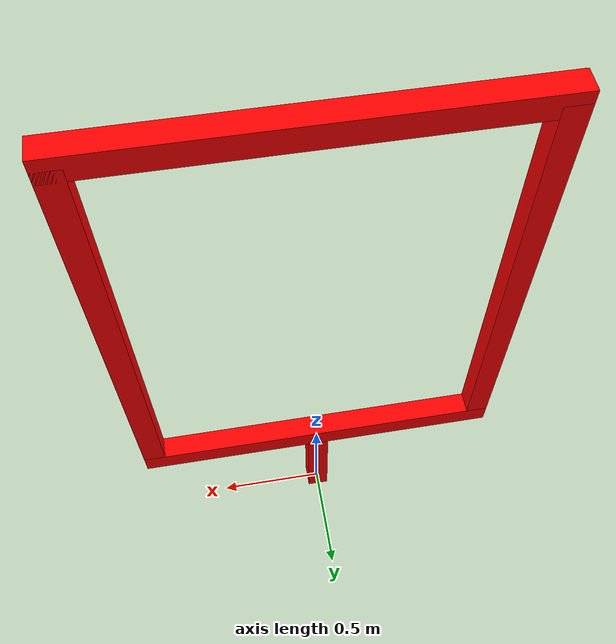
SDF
<?xml version="1.0" encoding="UTF-8"?>
<sdf version="1.9">
  <model name="puerta_roja_grande">  <static>true</static>
    <link name="soporte"> <pose>0 0 0.25 0 0 0</pose>
      <collision name="col_soporte"><geometry><box><size>0.1 0.1 0.5</size></box></geometry></collision>
      <visual name="vis_soporte"><geometry><box><size>0.1 0.1 0.5</size></box></geometry><material><ambient>1 0 0 1</ambient><diffuse>1 0 0 1</diffuse></material></visual>
    </link>
    <link name="barra_inferior">
      <pose>0 0 0.55 0 0 0</pose>
      <collision name="col_inferior"><geometry><box><size>1.7 0.1 0.1</size></box></geometry></collision>
      <visual name="vis_inferior"><geometry><box><size>1.7 0.1 0.1</size></box></geometry><material><ambient>1 0 0 1</ambient><diffuse>1 0 0 1</diffuse></material></visual>
    </link>
    <link name="barra_superior">
      <pose>0 0 2.55 0 0 0</pose>
      <collision name="col_superior"><geometry><box><size>1.7 0.1 0.1</size></box></geometry></collision>
      <visual name="vis_superior"><geometry><box><size>1.7 0.1 0.1</size></box></geometry><material><ambient>1 0 0 1</ambient><diffuse>1 0 0 1</diffuse></material></visual>
    </link>
    <link name="barra_izquierda">
      <pose>-0.8 0 1.55 0 0 0</pose>
      <collision name="col_izquierda"><geometry><box><size>0.1 0.1 2.0</size></box></geometry></collision>
      <visual name="vis_izquierda"><geometry><box><size>0.1 0.1 2.0</size></box></geometry><material><ambient>1 0 0 1</ambient><diffuse>1 0 0 1</diffuse></material></visual>
    </link>
    <link name="barra_derecha">
      <pose>0.8 0 1.55 0 0 0</pose>
      <collision name="col_derecha"><geometry><box><size>0.1 0.1 2.0</size></box></geometry></collision>
      <visual name="vis_derecha"><geometry><box><size>0.1 0.1 2.0</size></box></geometry><material><ambient>1 0 0 1</ambient><diffuse>1 0 0 1</diffuse></material></visual>
    </link>
    <joint name="joint_soporte_inferior" type="fixed"><parent>soporte</parent><child>barra_inferior</child></joint>
    <joint name="joint_inferior_izquierda" type="fixed"><parent>barra_inferior</parent><child>barra_izquierda</child></joint>
    <joint name="joint_inferior_derecha" type="fixed"><parent>barra_inferior</parent><child>barra_derecha</child></joint>
    <joint name="joint_inferior_superior" type="fixed"><parent>barra_inferior</parent><child>barra_superior</child></joint>
    </model>
</sdf>
